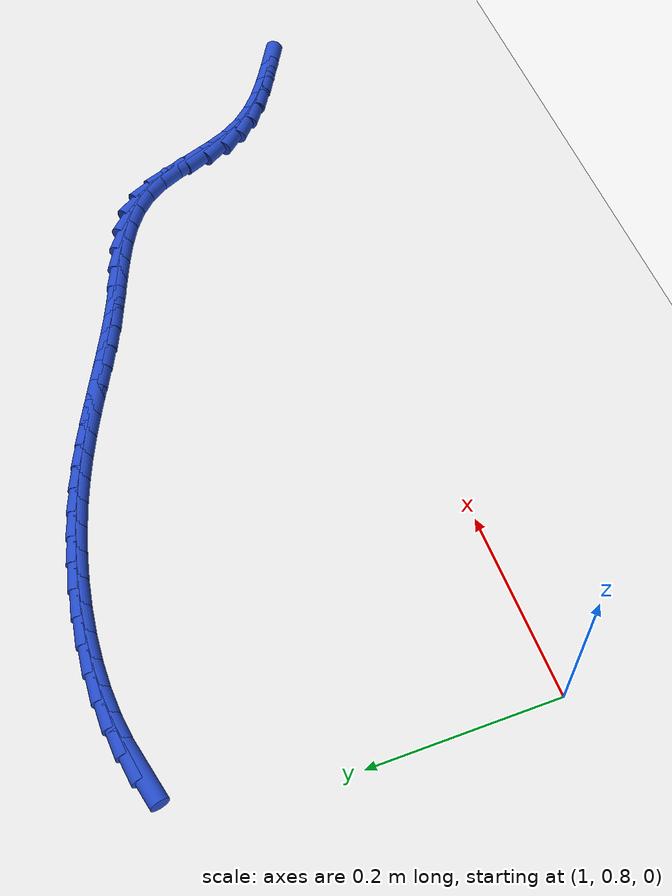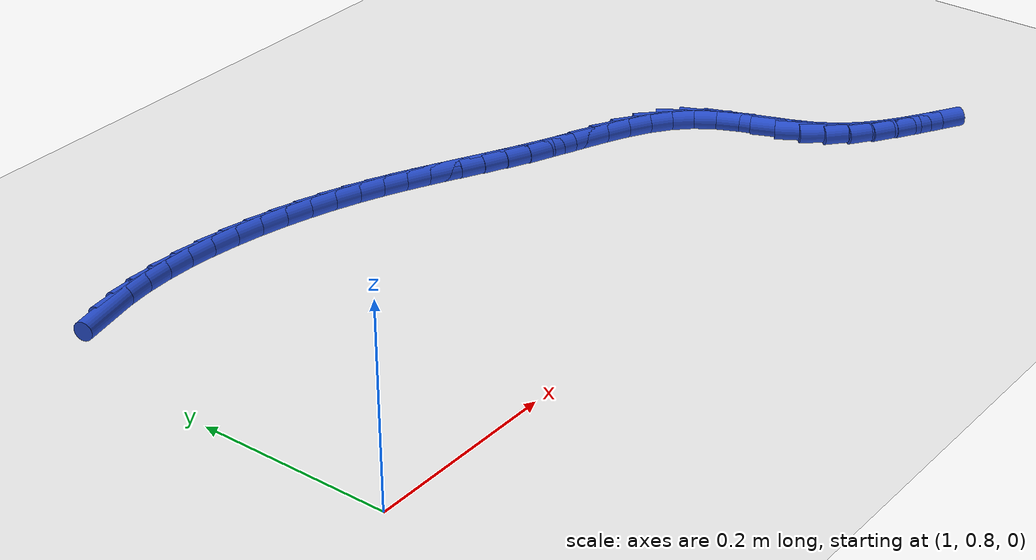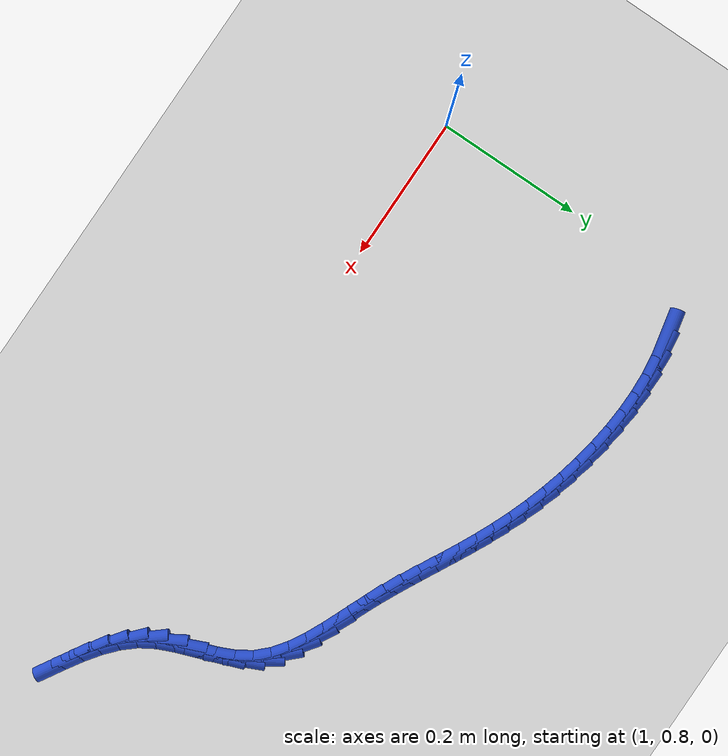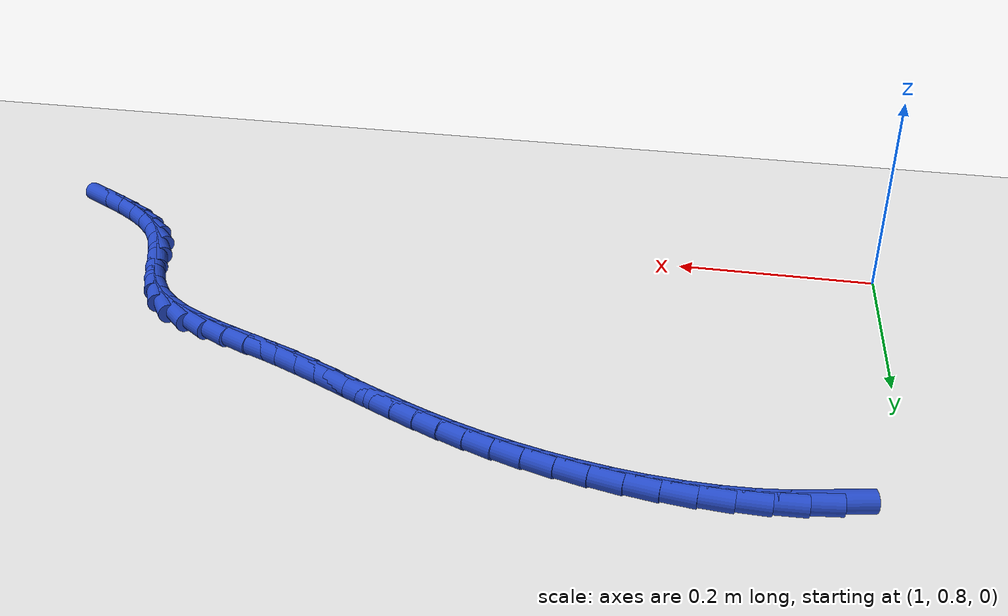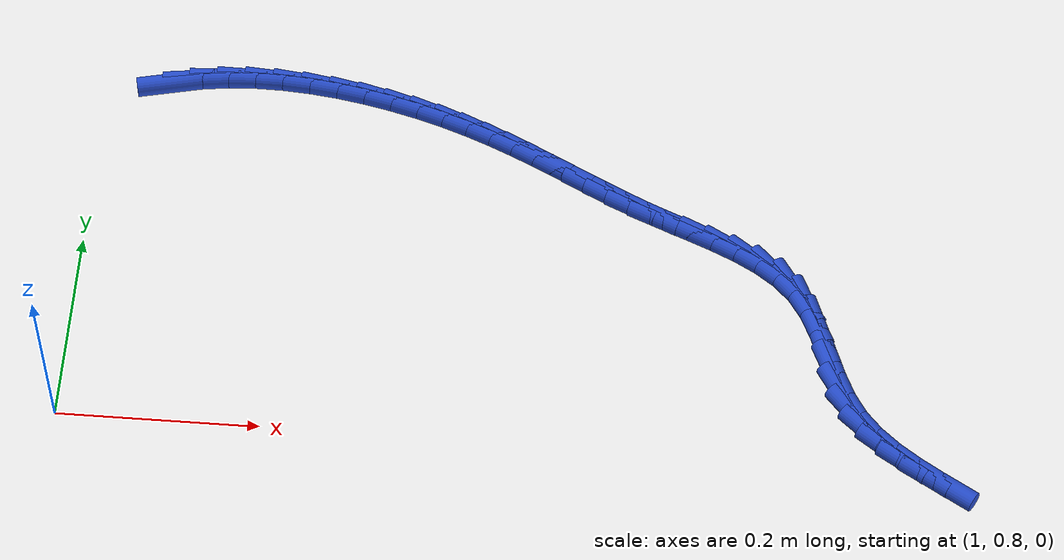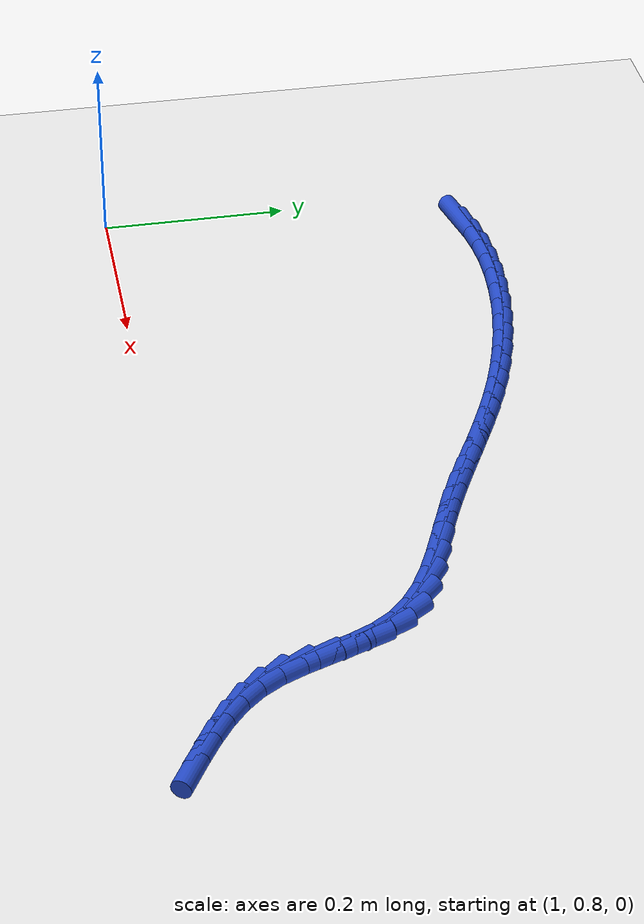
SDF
<sdf version="1.6">
 <world name="default">
  <model name="ground_plane">
   <static>1</static>
   <link name="link">
    <collision name="collision">
     <geometry><plane><normal>0 0 1</normal><size>100 100</size></plane></geometry>
     <surface><friction><ode><mu>100</mu><mu2>50</mu2></ode></friction></surface>
    </collision>
    <visual name="visual">
     <cast_shadows>0</cast_shadows>
     <geometry><plane><normal>0 0 1</normal><size>100 100</size></plane></geometry>
     <material>
      <script><uri>file://media/materials/scripts/gazebo.material</uri><name>Gazebo/WhiteGlow</name></script>
     </material>
    </visual>
   </link>
  </model>
  <model name="line">
   <link name="link_71">
    <pose>1.070247740960885 1.1922184225053516 0.01 0 1.57 0.2179138028654509</pose>
    <collision name="collision">
     <geometry><cylinder><radius>0.01</radius><length>0.08</length></cylinder></geometry>
    </collision>
    <visual name="visual">
     <material>
      <script><name>Gazebo/Blue</name><uri>file://media/materials/scripts/gazebo.material</uri></script>
     </material>
     <geometry><cylinder><radius>0.01</radius><length>0.08</length></cylinder></geometry>
    </visual>
   </link>
   <link name="link_72">
    <pose>1.0963232863912042 1.1979923284701777 0.01 0 1.57 0.13047536613558755</pose>
    <collision name="collision">
     <geometry><cylinder><radius>0.01</radius><length>0.08</length></cylinder></geometry>
    </collision>
    <visual name="visual">
     <material>
      <script><name>Gazebo/Blue</name><uri>file://media/materials/scripts/gazebo.material</uri></script>
     </material>
     <geometry><cylinder><radius>0.01</radius><length>0.08</length></cylinder></geometry>
    </visual>
   </link>
   <link name="link_73">
    <pose>1.1234472287861852 1.201551554956412 0.01 0 1.57 0.05360568125429907</pose>
    <collision name="collision">
     <geometry><cylinder><radius>0.01</radius><length>0.08</length></cylinder></geometry>
    </collision>
    <visual name="visual">
     <material>
      <script><name>Gazebo/Blue</name><uri>file://media/materials/scripts/gazebo.material</uri></script>
     </material>
     <geometry><cylinder><radius>0.01</radius><length>0.08</length></cylinder></geometry>
    </visual>
   </link>
   <link name="link_74">
    <pose>1.151379153434551 1.2030503006641227 0.01 0 1.57 -0.014298802001797738</pose>
    <collision name="collision">
     <geometry><cylinder><radius>0.01</radius><length>0.08</length></cylinder></geometry>
    </collision>
    <visual name="visual">
     <material>
      <script><name>Gazebo/Blue</name><uri>file://media/materials/scripts/gazebo.material</uri></script>
     </material>
     <geometry><cylinder><radius>0.01</radius><length>0.08</length></cylinder></geometry>
    </visual>
   </link>
   <link name="link_75">
    <pose>1.1798786456250254 1.2026427642933775 0.01 0 1.57 -0.07477779386527697</pose>
    <collision name="collision">
     <geometry><cylinder><radius>0.01</radius><length>0.08</length></cylinder></geometry>
    </collision>
    <visual name="visual">
     <material>
      <script><name>Gazebo/Blue</name><uri>file://media/materials/scripts/gazebo.material</uri></script>
     </material>
     <geometry><cylinder><radius>0.01</radius><length>0.08</length></cylinder></geometry>
    </visual>
   </link>
   <link name="link_76">
    <pose>1.2087052906463314 1.2004831445442443 0.01 0 1.57 -0.12923298694747284</pose>
    <collision name="collision">
     <geometry><cylinder><radius>0.01</radius><length>0.08</length></cylinder></geometry>
    </collision>
    <visual name="visual">
     <material>
      <script><name>Gazebo/Blue</name><uri>file://media/materials/scripts/gazebo.material</uri></script>
     </material>
     <geometry><cylinder><radius>0.01</radius><length>0.08</length></cylinder></geometry>
    </visual>
   </link>
   <link name="link_77">
    <pose>1.2376186737871921 1.1967256401167907 0.01 0 1.57 -0.17891605536863858</pose>
    <collision name="collision">
     <geometry><cylinder><radius>0.01</radius><length>0.08</length></cylinder></geometry>
    </collision>
    <visual name="visual">
     <material>
      <script><name>Gazebo/Blue</name><uri>file://media/materials/scripts/gazebo.material</uri></script>
     </material>
     <geometry><cylinder><radius>0.01</radius><length>0.08</length></cylinder></geometry>
    </visual>
   </link>
   <link name="link_78">
    <pose>1.266378380336331 1.1915244497110846 0.01 0 1.57 -0.22494931499626533</pose>
    <collision name="collision">
     <geometry><cylinder><radius>0.01</radius><length>0.08</length></cylinder></geometry>
    </collision>
    <visual name="visual">
     <material>
      <script><name>Gazebo/Blue</name><uri>file://media/materials/scripts/gazebo.material</uri></script>
     </material>
     <geometry><cylinder><radius>0.01</radius><length>0.08</length></cylinder></geometry>
    </visual>
   </link>
   <link name="link_79">
    <pose>1.294743995582471 1.185033772027194 0.01 0 1.57 -0.2683632346415801</pose>
    <collision name="collision">
     <geometry><cylinder><radius>0.01</radius><length>0.08</length></cylinder></geometry>
    </collision>
    <visual name="visual">
     <material>
      <script><name>Gazebo/Blue</name><uri>file://media/materials/scripts/gazebo.material</uri></script>
     </material>
     <geometry><cylinder><radius>0.01</radius><length>0.08</length></cylinder></geometry>
    </visual>
   </link>
   <link name="link_80">
    <pose>1.3224751048143362 1.1774078057651873 0.01 0 1.57 -0.31014453927487234</pose>
    <collision name="collision">
     <geometry><cylinder><radius>0.01</radius><length>0.08</length></cylinder></geometry>
    </collision>
    <visual name="visual">
     <material>
      <script><name>Gazebo/Blue</name><uri>file://media/materials/scripts/gazebo.material</uri></script>
     </material>
     <geometry><cylinder><radius>0.01</radius><length>0.08</length></cylinder></geometry>
    </visual>
   </link>
   <link name="link_81">
    <pose>1.3493312933206483 1.1688007496251314 0.01 0 1.57 -0.3512891748992561</pose>
    <collision name="collision">
     <geometry><cylinder><radius>0.01</radius><length>0.08</length></cylinder></geometry>
    </collision>
    <visual name="visual">
     <material>
      <script><name>Gazebo/Blue</name><uri>file://media/materials/scripts/gazebo.material</uri></script>
     </material>
     <geometry><cylinder><radius>0.01</radius><length>0.08</length></cylinder></geometry>
    </visual>
   </link>
   <link name="link_82">
    <pose>1.3750726820500716 1.1593667845814732 0.01 0 1.57 -0.3910746335473263</pose>
    <collision name="collision">
     <geometry><cylinder><radius>0.01</radius><length>0.08</length></cylinder></geometry>
    </collision>
    <visual name="visual">
     <material>
      <script><name>Gazebo/Blue</name><uri>file://media/materials/scripts/gazebo.material</uri></script>
     </material>
     <geometry><cylinder><radius>0.01</radius><length>0.08</length></cylinder></geometry>
    </visual>
   </link>
   <link name="link_83">
    <pose>1.3995959025546107 1.149255574311107 0.01 0 1.57 -0.4251851816200846</pose>
    <collision name="collision">
     <geometry><cylinder><radius>0.01</radius><length>0.08</length></cylinder></geometry>
    </collision>
    <visual name="visual">
     <material>
      <script><name>Gazebo/Blue</name><uri>file://media/materials/scripts/gazebo.material</uri></script>
     </material>
     <geometry><cylinder><radius>0.01</radius><length>0.08</length></cylinder></geometry>
    </visual>
   </link>
   <link name="link_84">
    <pose>1.4231142859453345 1.1386063025274138 0.01 0 1.57 -0.4517666646567221</pose>
    <collision name="collision">
     <geometry><cylinder><radius>0.01</radius><length>0.08</length></cylinder></geometry>
    </collision>
    <visual name="visual">
     <material>
      <script><name>Gazebo/Blue</name><uri>file://media/materials/scripts/gazebo.material</uri></script>
     </material>
     <geometry><cylinder><radius>0.01</radius><length>0.08</length></cylinder></geometry>
    </visual>
   </link>
   <link name="link_85">
    <pose>1.4458859595023317 1.1275566705854827 0.01 0 1.57 -0.46975883965434473</pose>
    <collision name="collision">
     <geometry><cylinder><radius>0.01</radius><length>0.08</length></cylinder></geometry>
    </collision>
    <visual name="visual">
     <material>
      <script><name>Gazebo/Blue</name><uri>file://media/materials/scripts/gazebo.material</uri></script>
     </material>
     <geometry><cylinder><radius>0.01</radius><length>0.08</length></cylinder></geometry>
    </visual>
   </link>
   <link name="link_86">
    <pose>1.4681690505056928 1.1162443798404045 0.01 0 1.57 -0.4784434930785794</pose>
    <collision name="collision">
     <geometry><cylinder><radius>0.01</radius><length>0.08</length></cylinder></geometry>
    </collision>
    <visual name="visual">
     <material>
      <script><name>Gazebo/Blue</name><uri>file://media/materials/scripts/gazebo.material</uri></script>
     </material>
     <geometry><cylinder><radius>0.01</radius><length>0.08</length></cylinder></geometry>
    </visual>
   </link>
   <link name="link_87">
    <pose>1.490221686235506 1.104807131647268 0.01 0 1.57 -0.47747598322334617</pose>
    <collision name="collision">
     <geometry><cylinder><radius>0.01</radius><length>0.08</length></cylinder></geometry>
    </collision>
    <visual name="visual">
     <material>
      <script><name>Gazebo/Blue</name><uri>file://media/materials/scripts/gazebo.material</uri></script>
     </material>
     <geometry><cylinder><radius>0.01</radius><length>0.08</length></cylinder></geometry>
    </visual>
   </link>
   <link name="link_88">
    <pose>1.5123019939718612 1.0933826273611638 0.01 0 1.57 -0.46689743039119647</pose>
    <collision name="collision">
     <geometry><cylinder><radius>0.01</radius><length>0.08</length></cylinder></geometry>
    </collision>
    <visual name="visual">
     <material>
      <script><name>Gazebo/Blue</name><uri>file://media/materials/scripts/gazebo.material</uri></script>
     </material>
     <geometry><cylinder><radius>0.01</radius><length>0.08</length></cylinder></geometry>
    </visual>
   </link>
   <link name="link_89">
    <pose>1.534668100994847 1.0821085683371812 0.01 0 1.57 -0.44713308906673693</pose>
    <collision name="collision">
     <geometry><cylinder><radius>0.01</radius><length>0.08</length></cylinder></geometry>
    </collision>
    <visual name="visual">
     <material>
      <script><name>Gazebo/Blue</name><uri>file://media/materials/scripts/gazebo.material</uri></script>
     </material>
     <geometry><cylinder><radius>0.01</radius><length>0.08</length></cylinder></geometry>
    </visual>
   </link>
   <link name="link_90">
    <pose>1.5575781345845532 1.07112265593041 0.01 0 1.57 -0.4190330067489743</pose>
    <collision name="collision">
     <geometry><cylinder><radius>0.01</radius><length>0.08</length></cylinder></geometry>
    </collision>
    <visual name="visual">
     <material>
      <script><name>Gazebo/Blue</name><uri>file://media/materials/scripts/gazebo.material</uri></script>
     </material>
     <geometry><cylinder><radius>0.01</radius><length>0.08</length></cylinder></geometry>
    </visual>
   </link>
   <link name="link_91">
    <pose>1.5812888483814767 1.0605615908172907 0.01 0 1.57 -0.39529630853844416</pose>
    <collision name="collision">
     <geometry><cylinder><radius>0.01</radius><length>0.08</length></cylinder></geometry>
    </collision>
    <visual name="visual">
     <material>
      <script><name>Gazebo/Blue</name><uri>file://media/materials/scripts/gazebo.material</uri></script>
     </material>
     <geometry><cylinder><radius>0.01</radius><length>0.08</length></cylinder></geometry>
    </visual>
   </link>
   <link name="link_92">
    <pose>1.6057644074673925 1.0503489266993513 0.01 0 1.57 -0.40126845499846486</pose>
    <collision name="collision">
     <geometry><cylinder><radius>0.01</radius><length>0.08</length></cylinder></geometry>
    </collision>
    <visual name="visual">
     <material>
      <script><name>Gazebo/Blue</name><uri>file://media/materials/scripts/gazebo.material</uri></script>
     </material>
     <geometry><cylinder><radius>0.01</radius><length>0.08</length></cylinder></geometry>
    </visual>
   </link>
   <link name="link_93">
    <pose>1.6303154956926333 1.039932164666036 0.01 0 1.57 -0.4403537898744609</pose>
    <collision name="collision">
     <geometry><cylinder><radius>0.01</radius><length>0.08</length></cylinder></geometry>
    </collision>
    <visual name="visual">
     <material>
      <script><name>Gazebo/Blue</name><uri>file://media/materials/scripts/gazebo.material</uri></script>
     </material>
     <geometry><cylinder><radius>0.01</radius><length>0.08</length></cylinder></geometry>
    </visual>
   </link>
   <link name="link_94">
    <pose>1.6541642715166005 1.0286943162062308 0.01 0 1.57 -0.5155615616690252</pose>
    <collision name="collision">
     <geometry><cylinder><radius>0.01</radius><length>0.08</length></cylinder></geometry>
    </collision>
    <visual name="visual">
     <material>
      <script><name>Gazebo/Blue</name><uri>file://media/materials/scripts/gazebo.material</uri></script>
     </material>
     <geometry><cylinder><radius>0.01</radius><length>0.08</length></cylinder></geometry>
    </visual>
   </link>
   <link name="link_95">
    <pose>1.6765328933986903 1.0160183928088196 0.01 0 1.57 -0.6322051913913304</pose>
    <collision name="collision">
     <geometry><cylinder><radius>0.01</radius><length>0.08</length></cylinder></geometry>
    </collision>
    <visual name="visual">
     <material>
      <script><name>Gazebo/Blue</name><uri>file://media/materials/scripts/gazebo.material</uri></script>
     </material>
     <geometry><cylinder><radius>0.01</radius><length>0.08</length></cylinder></geometry>
    </visual>
   </link>
   <link name="link_96">
    <pose>1.6966435197983054 1.0012874059626888 0.01 0 1.57 -0.794918470492463</pose>
    <collision name="collision">
     <geometry><cylinder><radius>0.01</radius><length>0.08</length></cylinder></geometry>
    </collision>
    <visual name="visual">
     <material>
      <script><name>Gazebo/Blue</name><uri>file://media/materials/scripts/gazebo.material</uri></script>
     </material>
     <geometry><cylinder><radius>0.01</radius><length>0.08</length></cylinder></geometry>
    </visual>
   </link>
   <link name="link_97">
    <pose>1.7137183091748451 0.9838843671567238 0.01 0 1.57 -0.9917346343460552</pose>
    <collision name="collision">
     <geometry><cylinder><radius>0.01</radius><length>0.08</length></cylinder></geometry>
    </collision>
    <visual name="visual">
     <material>
      <script><name>Gazebo/Blue</name><uri>file://media/materials/scripts/gazebo.material</uri></script>
     </material>
     <geometry><cylinder><radius>0.01</radius><length>0.08</length></cylinder></geometry>
    </visual>
   </link>
   <link name="link_98">
    <pose>1.727153169954902 0.9633363688067045 0.01 0 1.57 -1.1414070285974238</pose>
    <collision name="collision">
     <geometry><cylinder><radius>0.01</radius><length>0.08</length></cylinder></geometry>
    </collision>
    <visual name="visual">
     <material>
      <script><name>Gazebo/Blue</name><uri>file://media/materials/scripts/gazebo.material</uri></script>
     </material>
     <geometry><cylinder><radius>0.01</radius><length>0.08</length></cylinder></geometry>
    </visual>
   </link>
   <link name="link_99">
    <pose>1.7377024814265754 0.9402970056469295 0.01 0 1.57 -1.214648680325641</pose>
    <collision name="collision">
     <geometry><cylinder><radius>0.01</radius><length>0.08</length></cylinder></geometry>
    </collision>
    <visual name="visual">
     <material>
      <script><name>Gazebo/Blue</name><uri>file://media/materials/scripts/gazebo.material</uri></script>
     </material>
     <geometry><cylinder><radius>0.01</radius><length>0.08</length></cylinder></geometry>
    </visual>
   </link>
   <link name="link_100">
    <pose>1.7467598547458523 0.915949950900426 0.01 0 1.57 -1.219669370338987</pose>
    <collision name="collision">
     <geometry><cylinder><radius>0.01</radius><length>0.08</length></cylinder></geometry>
    </collision>
    <visual name="visual">
     <material>
      <script><name>Gazebo/Blue</name><uri>file://media/materials/scripts/gazebo.material</uri></script>
     </material>
     <geometry><cylinder><radius>0.01</radius><length>0.08</length></cylinder></geometry>
    </visual>
   </link>
   <link name="link_101">
    <pose>1.7557226272244497 0.891481967678408 0.01 0 1.57 -1.1574154397455227</pose>
    <collision name="collision">
     <geometry><cylinder><radius>0.01</radius><length>0.08</length></cylinder></geometry>
    </collision>
    <visual name="visual">
     <material>
      <script><name>Gazebo/Blue</name><uri>file://media/materials/scripts/gazebo.material</uri></script>
     </material>
     <geometry><cylinder><radius>0.01</radius><length>0.08</length></cylinder></geometry>
    </visual>
   </link>
   <link name="link_102">
    <pose>1.7659881361740817 0.8680798190920871 0.01 0 1.57 -1.0222295775568033</pose>
    <collision name="collision">
     <geometry><cylinder><radius>0.01</radius><length>0.08</length></cylinder></geometry>
    </collision>
    <visual name="visual">
     <material>
      <script><name>Gazebo/Blue</name><uri>file://media/materials/scripts/gazebo.material</uri></script>
     </material>
     <geometry><cylinder><radius>0.01</radius><length>0.08</length></cylinder></geometry>
    </visual>
   </link>
   <link name="link_103">
    <pose>1.7789274315181915 0.8469072521631489 0.01 0 1.57 -0.8554769707423</pose>
    <collision name="collision">
     <geometry><cylinder><radius>0.01</radius><length>0.08</length></cylinder></geometry>
    </collision>
    <visual name="visual">
     <material>
      <script><name>Gazebo/Blue</name><uri>file://media/materials/scripts/gazebo.material</uri></script>
     </material>
     <geometry><cylinder><radius>0.01</radius><length>0.08</length></cylinder></geometry>
    </visual>
   </link>
   <link name="link_104">
    <pose>1.7950385216113842 0.8283636168305144 0.01 0 1.57 -0.7204473173159498</pose>
    <collision name="collision">
     <geometry><cylinder><radius>0.01</radius><length>0.08</length></cylinder></geometry>
    </collision>
    <visual name="visual">
     <material>
      <script><name>Gazebo/Blue</name><uri>file://media/materials/scripts/gazebo.material</uri></script>
     </material>
     <geometry><cylinder><radius>0.01</radius><length>0.08</length></cylinder></geometry>
    </visual>
   </link>
   <link name="link_105">
    <pose>1.8137646202033428 0.8119247309268458 0.01 0 1.57 -0.6238387222250147</pose>
    <collision name="collision">
     <geometry><cylinder><radius>0.01</radius><length>0.08</length></cylinder></geometry>
    </collision>
    <visual name="visual">
     <material>
      <script><name>Gazebo/Blue</name><uri>file://media/materials/scripts/gazebo.material</uri></script>
     </material>
     <geometry><cylinder><radius>0.01</radius><length>0.08</length></cylinder></geometry>
    </visual>
   </link>
   <link name="link_106">
    <pose>1.8344858950091907 0.797011211929384 0.01 0 1.57 -0.5636971182377408</pose>
    <collision name="collision">
     <geometry><cylinder><radius>0.01</radius><length>0.08</length></cylinder></geometry>
    </collision>
    <visual name="visual">
     <material>
      <script><name>Gazebo/Blue</name><uri>file://media/materials/scripts/gazebo.material</uri></script>
     </material>
     <geometry><cylinder><radius>0.01</radius><length>0.08</length></cylinder></geometry>
    </visual>
   </link>
   <link name="link_107">
    <pose>1.8565825137440515 0.7830436773153694 0.01 0 1.57 -0.5368614403825096</pose>
    <collision name="collision">
     <geometry><cylinder><radius>0.01</radius><length>0.08</length></cylinder></geometry>
    </collision>
    <visual name="visual">
     <material>
      <script><name>Gazebo/Blue</name><uri>file://media/materials/scripts/gazebo.material</uri></script>
     </material>
     <geometry><cylinder><radius>0.01</radius><length>0.08</length></cylinder></geometry>
    </visual>
   </link>
  </model>
 </world>
</sdf>
